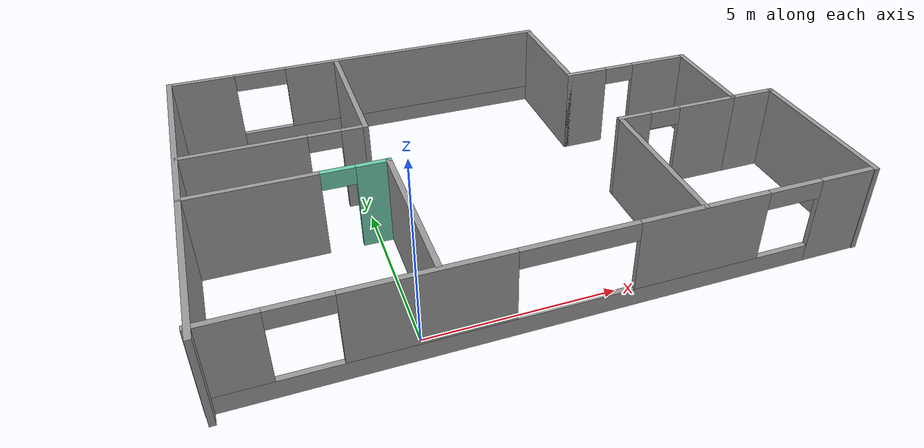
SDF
<?xml version='1.0'?>
<sdf version='1.6'>
  <model name='MyBuilding'>
    <pose frame=''>3.48636 4.585 0 0 -0 0</pose>
    <link name='Wall_0'>
      <collision name='Wall_0_Collision'>
        <geometry>
          <box>
            <size>11 0.15 2.5</size>
          </box>
        </geometry>
        <pose frame=''>0 0 1.25 0 -0 0</pose>
      </collision>
      <visual name='Wall_0_Visual'>
        <pose frame=''>0 0 1.25 0 -0 0</pose>
        <geometry>
          <box>
            <size>11 0.15 2.5</size>
          </box>
        </geometry>
        <material>
          <script>
            <uri>file://media/materials/scripts/gazebo.material</uri>
            <name>Gazebo/Grey</name>
          </script>
          <ambient>1 1 1 1</ambient>
        </material>
        <meta>
          <layer>0</layer>
        </meta>
      </visual>
      <pose frame=''>-8.20636 0 0 0 -0 1.5708</pose>
    </link>
    <link name='Wall_1'>
      <pose frame=''>-2.53136 5.425 0 0 -0 0</pose>
      <visual name='Wall_1_Visual_0'>
        <pose frame=''>-4.78254 0 1.25 0 -0 0</pose>
        <geometry>
          <box>
            <size>1.93492 0.15 2.5</size>
          </box>
        </geometry>
        <material>
          <script>
            <uri>file://media/materials/scripts/gazebo.material</uri>
            <name>Gazebo/Grey</name>
          </script>
          <ambient>1 1 1 1</ambient>
        </material>
        <meta>
          <layer>0</layer>
        </meta>
      </visual>
      <collision name='Wall_1_Collision_0'>
        <geometry>
          <box>
            <size>1.93492 0.15 2.5</size>
          </box>
        </geometry>
        <pose frame=''>-4.78254 0 1.25 0 -0 0</pose>
      </collision>
      <visual name='Wall_1_Visual_1'>
        <pose frame=''>0.967458 0 0.25 0 -0 0</pose>
        <geometry>
          <box>
            <size>9.56508 0.15 0.5</size>
          </box>
        </geometry>
        <material>
          <script>
            <uri>file://media/materials/scripts/gazebo.material</uri>
            <name>Gazebo/Grey</name>
          </script>
          <ambient>1 1 1 1</ambient>
        </material>
        <meta>
          <layer>0</layer>
        </meta>
      </visual>
      <collision name='Wall_1_Collision_1'>
        <geometry>
          <box>
            <size>9.56508 0.15 0.5</size>
          </box>
        </geometry>
        <pose frame=''>0.967458 0 0.25 0 -0 0</pose>
      </collision>
      <visual name='Wall_1_Visual_2'>
        <pose frame=''>1.71746 0 1.5 0 -0 0</pose>
        <geometry>
          <box>
            <size>8.06508 0.15 2</size>
          </box>
        </geometry>
        <material>
          <script>
            <uri>file://media/materials/scripts/gazebo.material</uri>
            <name>Gazebo/Grey</name>
          </script>
          <ambient>1 1 1 1</ambient>
        </material>
        <meta>
          <layer>0</layer>
        </meta>
      </visual>
      <collision name='Wall_1_Collision_2'>
        <geometry>
          <box>
            <size>8.06508 0.15 2</size>
          </box>
        </geometry>
        <pose frame=''>1.71746 0 1.5 0 -0 0</pose>
      </collision>
      <visual name='Wall_1_Visual_3'>
        <pose frame=''>-3.06508 0 2.25 0 -0 0</pose>
        <geometry>
          <box>
            <size>1.5 0.15 0.5</size>
          </box>
        </geometry>
        <material>
          <script>
            <uri>file://media/materials/scripts/gazebo.material</uri>
            <name>Gazebo/Grey</name>
          </script>
          <ambient>1 1 1 1</ambient>
        </material>
        <meta>
          <layer>0</layer>
        </meta>
      </visual>
      <collision name='Wall_1_Collision_3'>
        <geometry>
          <box>
            <size>1.5 0.15 0.5</size>
          </box>
        </geometry>
        <pose frame=''>-3.06508 0 2.25 0 -0 0</pose>
      </collision>
    </link>
    <link name='Wall_10'>
      <pose frame=''>-5.63893 -0.652816 0 0 -0 0</pose>
      <visual name='Wall_10_Visual_0'>
        <pose frame=''>-0.921002 0 1.25 0 -0 0</pose>
        <geometry>
          <box>
            <size>3.408 0.15 2.5</size>
          </box>
        </geometry>
        <material>
          <script>
            <uri>file://media/materials/scripts/gazebo.material</uri>
            <name>Gazebo/Grey</name>
          </script>
          <ambient>1 1 1 1</ambient>
        </material>
        <meta>
          <layer>0</layer>
        </meta>
      </visual>
      <collision name='Wall_10_Collision_0'>
        <geometry>
          <box>
            <size>3.408 0.15 2.5</size>
          </box>
        </geometry>
        <pose frame=''>-0.921002 0 1.25 0 -0 0</pose>
      </collision>
      <visual name='Wall_10_Visual_1'>
        <pose frame=''>2.154 0 1.25 0 -0 0</pose>
        <geometry>
          <box>
            <size>0.942003 0.15 2.5</size>
          </box>
        </geometry>
        <material>
          <script>
            <uri>file://media/materials/scripts/gazebo.material</uri>
            <name>Gazebo/Grey</name>
          </script>
          <ambient>0.435294 0.796078 0.67451 1</ambient>
        </material>
        <meta>
          <layer>0</layer>
        </meta>
      </visual>
      <collision name='Wall_10_Collision_1'>
        <geometry>
          <box>
            <size>0.942003 0.15 2.5</size>
          </box>
        </geometry>
        <pose frame=''>2.154 0 1.25 0 -0 0</pose>
      </collision>
      <visual name='Wall_10_Visual_2'>
        <pose frame=''>1.233 0 2.25 0 -0 0</pose>
        <geometry>
          <box>
            <size>0.9 0.15 0.5</size>
          </box>
        </geometry>
        <material>
          <script>
            <uri>file://media/materials/scripts/gazebo.material</uri>
            <name>Gazebo/Grey</name>
          </script>
          <ambient>0.435294 0.796078 0.67451 1</ambient>
        </material>
        <meta>
          <layer>0</layer>
        </meta>
      </visual>
      <collision name='Wall_10_Collision_2'>
        <geometry>
          <box>
            <size>0.9 0.15 0.5</size>
          </box>
        </geometry>
        <pose frame=''>1.233 0 2.25 0 -0 0</pose>
      </collision>
    </link>
    <link name='Wall_11'>
      <collision name='Wall_11_Collision'>
        <geometry>
          <box>
            <size>4.5 0.15 2.5</size>
          </box>
        </geometry>
        <pose frame=''>0 0 1.25 0 -0 0</pose>
      </collision>
      <visual name='Wall_11_Visual'>
        <pose frame=''>0 0 1.25 0 -0 0</pose>
        <geometry>
          <box>
            <size>4.5 0.15 2.5</size>
          </box>
        </geometry>
        <material>
          <script>
            <uri>file://media/materials/scripts/gazebo.material</uri>
            <name>Gazebo/Grey</name>
          </script>
          <ambient>1 1 1 1</ambient>
        </material>
        <meta>
          <layer>0</layer>
        </meta>
      </visual>
      <pose frame=''>-3.08893 -2.82782 0 0 0 -1.5708</pose>
    </link>
    <link name='Wall_13'>
      <pose frame=''>-5.71073 1.2092 0 0 -0 0</pose>
      <visual name='Wall_13_Visual_0'>
        <pose frame=''>-0.822602 0 1.25 0 -0 0</pose>
        <geometry>
          <box>
            <size>3.3548 0.15 2.5</size>
          </box>
        </geometry>
        <material>
          <script>
            <uri>file://media/materials/scripts/gazebo.material</uri>
            <name>Gazebo/Grey</name>
          </script>
          <ambient>1 1 1 1</ambient>
        </material>
        <meta>
          <layer>0</layer>
        </meta>
      </visual>
      <collision name='Wall_13_Collision_0'>
        <geometry>
          <box>
            <size>3.3548 0.15 2.5</size>
          </box>
        </geometry>
        <pose frame=''>-0.822602 0 1.25 0 -0 0</pose>
      </collision>
      <visual name='Wall_13_Visual_1'>
        <pose frame=''>2.1274 0 1.25 0 -0 0</pose>
        <geometry>
          <box>
            <size>0.745204 0.15 2.5</size>
          </box>
        </geometry>
        <material>
          <script>
            <uri>file://media/materials/scripts/gazebo.material</uri>
            <name>Gazebo/Grey</name>
          </script>
          <ambient>1 1 1 1</ambient>
        </material>
        <meta>
          <layer>0</layer>
        </meta>
      </visual>
      <collision name='Wall_13_Collision_1'>
        <geometry>
          <box>
            <size>0.745204 0.15 2.5</size>
          </box>
        </geometry>
        <pose frame=''>2.1274 0 1.25 0 -0 0</pose>
      </collision>
      <visual name='Wall_13_Visual_2'>
        <pose frame=''>1.3048 0 2.25 0 -0 0</pose>
        <geometry>
          <box>
            <size>0.9 0.15 0.5</size>
          </box>
        </geometry>
        <material>
          <script>
            <uri>file://media/materials/scripts/gazebo.material</uri>
            <name>Gazebo/Grey</name>
          </script>
          <ambient>1 1 1 1</ambient>
        </material>
        <meta>
          <layer>0</layer>
        </meta>
      </visual>
      <collision name='Wall_13_Collision_2'>
        <geometry>
          <box>
            <size>0.9 0.15 0.5</size>
          </box>
        </geometry>
        <pose frame=''>1.3048 0 2.25 0 -0 0</pose>
      </collision>
    </link>
    <link name='Wall_18'>
      <collision name='Wall_18_Collision'>
        <geometry>
          <box>
            <size>4.25 0.15 2.5</size>
          </box>
        </geometry>
        <pose frame=''>0 0 1.25 0 -0 0</pose>
      </collision>
      <visual name='Wall_18_Visual'>
        <pose frame=''>0 0 1.25 0 -0 0</pose>
        <geometry>
          <box>
            <size>4.25 0.15 2.5</size>
          </box>
        </geometry>
        <material>
          <script>
            <uri>file://media/materials/scripts/gazebo.material</uri>
            <name>Gazebo/Grey</name>
          </script>
          <ambient>1 1 1 1</ambient>
        </material>
        <meta>
          <layer>0</layer>
        </meta>
      </visual>
      <pose frame=''>-3.28573 3.2592 0 0 -0 1.5708</pose>
    </link>
    <link name='Wall_2'>
      <collision name='Wall_2_Collision'>
        <geometry>
          <box>
            <size>3.5 0.15 2.5</size>
          </box>
        </geometry>
        <pose frame=''>0 0 1.25 0 -0 0</pose>
      </collision>
      <visual name='Wall_2_Visual'>
        <pose frame=''>0 0 1.25 0 -0 0</pose>
        <geometry>
          <box>
            <size>3.5 0.15 2.5</size>
          </box>
        </geometry>
        <material>
          <script>
            <uri>file://media/materials/scripts/gazebo.material</uri>
            <name>Gazebo/Grey</name>
          </script>
          <ambient>1 1 1 1</ambient>
        </material>
        <meta>
          <layer>0</layer>
        </meta>
      </visual>
      <pose frame=''>3.14364 3.75 0 0 0 -1.5708</pose>
    </link>
    <link name='Wall_25'>
      <pose frame=''>5.19364 -0.775 0 0 -0 3.14159</pose>
      <visual name='Wall_25_Visual_0'>
        <pose frame=''>-0.95482 0 1.25 0 -0 0</pose>
        <geometry>
          <box>
            <size>1.84036 0.15 2.5</size>
          </box>
        </geometry>
        <material>
          <script>
            <uri>file://media/materials/scripts/gazebo.material</uri>
            <name>Gazebo/Grey</name>
          </script>
          <ambient>1 1 1 1</ambient>
        </material>
        <meta>
          <layer>0</layer>
        </meta>
      </visual>
      <collision name='Wall_25_Collision_0'>
        <geometry>
          <box>
            <size>1.84036 0.15 2.5</size>
          </box>
        </geometry>
        <pose frame=''>-0.95482 0 1.25 0 -0 0</pose>
      </collision>
      <visual name='Wall_25_Visual_1'>
        <pose frame=''>1.37018 0 1.25 0 -0 0</pose>
        <geometry>
          <box>
            <size>1.00964 0.15 2.5</size>
          </box>
        </geometry>
        <material>
          <script>
            <uri>file://media/materials/scripts/gazebo.material</uri>
            <name>Gazebo/Grey</name>
          </script>
          <ambient>1 1 1 1</ambient>
        </material>
        <meta>
          <layer>0</layer>
        </meta>
      </visual>
      <collision name='Wall_25_Collision_1'>
        <geometry>
          <box>
            <size>1.00964 0.15 2.5</size>
          </box>
        </geometry>
        <pose frame=''>1.37018 0 1.25 0 -0 0</pose>
      </collision>
      <visual name='Wall_25_Visual_2'>
        <pose frame=''>0.41536 0 2.25 0 -0 0</pose>
        <geometry>
          <box>
            <size>0.9 0.15 0.5</size>
          </box>
        </geometry>
        <material>
          <script>
            <uri>file://media/materials/scripts/gazebo.material</uri>
            <name>Gazebo/Grey</name>
          </script>
          <ambient>1 1 1 1</ambient>
        </material>
        <meta>
          <layer>0</layer>
        </meta>
      </visual>
      <collision name='Wall_25_Collision_2'>
        <geometry>
          <box>
            <size>0.9 0.15 0.5</size>
          </box>
        </geometry>
        <pose frame=''>0.41536 0 2.25 0 -0 0</pose>
      </collision>
    </link>
    <link name='Wall_26'>
      <collision name='Wall_26_Collision'>
        <geometry>
          <box>
            <size>4.5 0.15 2.5</size>
          </box>
        </geometry>
        <pose frame=''>0 0 1.25 0 -0 0</pose>
      </collision>
      <visual name='Wall_26_Visual'>
        <pose frame=''>0 0 1.25 0 -0 0</pose>
        <geometry>
          <box>
            <size>4.5 0.15 2.5</size>
          </box>
        </geometry>
        <material>
          <script>
            <uri>file://media/materials/scripts/gazebo.material</uri>
            <name>Gazebo/Grey</name>
          </script>
          <ambient>1 1 1 1</ambient>
        </material>
        <meta>
          <layer>0</layer>
        </meta>
      </visual>
      <pose frame=''>3.39364 -2.95 0 0 0 -1.5708</pose>
    </link>
    <link name='Wall_3'>
      <pose frame=''>5.06864 2.075 0 0 -0 0</pose>
      <visual name='Wall_3_Visual_0'>
        <pose frame=''>-1.36345 0 1.25 0 -0 0</pose>
        <geometry>
          <box>
            <size>1.2731 0.15 2.5</size>
          </box>
        </geometry>
        <material>
          <script>
            <uri>file://media/materials/scripts/gazebo.material</uri>
            <name>Gazebo/Grey</name>
          </script>
          <ambient>1 1 1 1</ambient>
        </material>
        <meta>
          <layer>0</layer>
        </meta>
      </visual>
      <collision name='Wall_3_Collision_0'>
        <geometry>
          <box>
            <size>1.2731 0.15 2.5</size>
          </box>
        </geometry>
        <pose frame=''>-1.36345 0 1.25 0 -0 0</pose>
      </collision>
      <visual name='Wall_3_Visual_1'>
        <pose frame=''>1.08655 0 1.25 0 -0 0</pose>
        <geometry>
          <box>
            <size>1.8269 0.15 2.5</size>
          </box>
        </geometry>
        <material>
          <script>
            <uri>file://media/materials/scripts/gazebo.material</uri>
            <name>Gazebo/Grey</name>
          </script>
          <ambient>1 1 1 1</ambient>
        </material>
        <meta>
          <layer>0</layer>
        </meta>
      </visual>
      <collision name='Wall_3_Collision_1'>
        <geometry>
          <box>
            <size>1.8269 0.15 2.5</size>
          </box>
        </geometry>
        <pose frame=''>1.08655 0 1.25 0 -0 0</pose>
      </collision>
      <visual name='Wall_3_Visual_2'>
        <pose frame=''>-0.276899 0 2.25 0 -0 0</pose>
        <geometry>
          <box>
            <size>0.9 0.15 0.5</size>
          </box>
        </geometry>
        <material>
          <script>
            <uri>file://media/materials/scripts/gazebo.material</uri>
            <name>Gazebo/Grey</name>
          </script>
          <ambient>1 1 1 1</ambient>
        </material>
        <meta>
          <layer>0</layer>
        </meta>
      </visual>
      <collision name='Wall_3_Collision_2'>
        <geometry>
          <box>
            <size>0.9 0.15 0.5</size>
          </box>
        </geometry>
        <pose frame=''>-0.276899 0 2.25 0 -0 0</pose>
      </collision>
    </link>
    <link name='Wall_4'>
      <collision name='Wall_4_Collision'>
        <geometry>
          <box>
            <size>3 0.15 2.5</size>
          </box>
        </geometry>
        <pose frame=''>0 0 1.25 0 -0 0</pose>
      </collision>
      <visual name='Wall_4_Visual'>
        <pose frame=''>0 0 1.25 0 -0 0</pose>
        <geometry>
          <box>
            <size>3 0.15 2.5</size>
          </box>
        </geometry>
        <material>
          <script>
            <uri>file://media/materials/scripts/gazebo.material</uri>
            <name>Gazebo/Grey</name>
          </script>
          <ambient>1 1 1 1</ambient>
        </material>
        <meta>
          <layer>0</layer>
        </meta>
      </visual>
      <pose frame=''>6.99364 0.65 0 0 0 -1.5708</pose>
    </link>
    <link name='Wall_5'>
      <collision name='Wall_5_Collision'>
        <geometry>
          <box>
            <size>1.4127 0.15 2.5</size>
          </box>
        </geometry>
        <pose frame=''>0 0 1.25 0 -0 0</pose>
      </collision>
      <visual name='Wall_5_Visual'>
        <pose frame=''>0 0 1.25 0 -0 0</pose>
        <geometry>
          <box>
            <size>1.4127 0.15 2.5</size>
          </box>
        </geometry>
        <material>
          <script>
            <uri>file://media/materials/scripts/gazebo.material</uri>
            <name>Gazebo/Grey</name>
          </script>
          <ambient>1 1 1 1</ambient>
        </material>
        <meta>
          <layer>0</layer>
        </meta>
      </visual>
      <pose frame=''>7.62494 -0.775642 0 0 0 -0.001017</pose>
    </link>
    <link name='Wall_6'>
      <collision name='Wall_6_Collision'>
        <geometry>
          <box>
            <size>4.5 0.15 2.5</size>
          </box>
        </geometry>
        <pose frame=''>0 0 1.25 0 -0 0</pose>
      </collision>
      <visual name='Wall_6_Visual'>
        <pose frame=''>0 0 1.25 0 -0 0</pose>
        <geometry>
          <box>
            <size>4.5 0.15 2.5</size>
          </box>
        </geometry>
        <material>
          <script>
            <uri>file://media/materials/scripts/gazebo.material</uri>
            <name>Gazebo/Grey</name>
          </script>
          <ambient>1 1 1 1</ambient>
        </material>
        <meta>
          <layer>0</layer>
        </meta>
      </visual>
      <pose frame=''>8.25624 -2.96667 0 0 0 -1.5708</pose>
    </link>
    <link name='Wall_7'>
      <pose frame=''>-6e-05 -5.12564 0 0 -0 3.14152</pose>
      <visual name='Wall_7_Visual_0'>
        <pose frame=''>-7.4912 0 1.25 0 -0 0</pose>
        <geometry>
          <box>
            <size>1.6802 0.15 2.5</size>
          </box>
        </geometry>
        <material>
          <script>
            <uri>file://media/materials/scripts/gazebo.material</uri>
            <name>Gazebo/Grey</name>
          </script>
          <ambient>1 1 1 1</ambient>
        </material>
        <meta>
          <layer>0</layer>
        </meta>
      </visual>
      <collision name='Wall_7_Collision_0'>
        <geometry>
          <box>
            <size>1.6802 0.15 2.5</size>
          </box>
        </geometry>
        <pose frame=''>-7.4912 0 1.25 0 -0 0</pose>
      </collision>
      <visual name='Wall_7_Visual_1'>
        <pose frame=''>0.840102 0 0.25 0 -0 0</pose>
        <geometry>
          <box>
            <size>14.9824 0.15 0.5</size>
          </box>
        </geometry>
        <material>
          <script>
            <uri>file://media/materials/scripts/gazebo.material</uri>
            <name>Gazebo/Grey</name>
          </script>
          <ambient>1 1 1 1</ambient>
        </material>
        <meta>
          <layer>0</layer>
        </meta>
      </visual>
      <collision name='Wall_7_Collision_1'>
        <geometry>
          <box>
            <size>14.9824 0.15 0.5</size>
          </box>
        </geometry>
        <pose frame=''>0.840102 0 0.25 0 -0 0</pose>
      </collision>
      <visual name='Wall_7_Visual_2'>
        <pose frame=''>-3.42169 0 1.5 0 -0 0</pose>
        <geometry>
          <box>
            <size>3.45881 0.15 2</size>
          </box>
        </geometry>
        <material>
          <script>
            <uri>file://media/materials/scripts/gazebo.material</uri>
            <name>Gazebo/Grey</name>
          </script>
          <ambient>1 1 1 1</ambient>
        </material>
        <meta>
          <layer>0</layer>
        </meta>
      </visual>
      <collision name='Wall_7_Collision_2'>
        <geometry>
          <box>
            <size>3.45881 0.15 2</size>
          </box>
        </geometry>
        <pose frame=''>-3.42169 0 1.5 0 -0 0</pose>
      </collision>
      <visual name='Wall_7_Visual_3'>
        <pose frame=''>3.30767 0 1.5 0 -0 0</pose>
        <geometry>
          <box>
            <size>3.99991 0.15 2</size>
          </box>
        </geometry>
        <material>
          <script>
            <uri>file://media/materials/scripts/gazebo.material</uri>
            <name>Gazebo/Grey</name>
          </script>
          <ambient>1 1 1 1</ambient>
        </material>
        <meta>
          <layer>0</layer>
        </meta>
      </visual>
      <collision name='Wall_7_Collision_3'>
        <geometry>
          <box>
            <size>3.99991 0.15 2</size>
          </box>
        </geometry>
        <pose frame=''>3.30767 0 1.5 0 -0 0</pose>
      </collision>
      <visual name='Wall_7_Visual_4'>
        <pose frame=''>7.56946 0 1.5 0 -0 0</pose>
        <geometry>
          <box>
            <size>1.52368 0.15 2</size>
          </box>
        </geometry>
        <material>
          <script>
            <uri>file://media/materials/scripts/gazebo.material</uri>
            <name>Gazebo/Grey</name>
          </script>
          <ambient>1 1 1 1</ambient>
        </material>
        <meta>
          <layer>0</layer>
        </meta>
      </visual>
      <collision name='Wall_7_Collision_4'>
        <geometry>
          <box>
            <size>1.52368 0.15 2</size>
          </box>
        </geometry>
        <pose frame=''>7.56946 0 1.5 0 -0 0</pose>
      </collision>
      <visual name='Wall_7_Visual_5'>
        <pose frame=''>-5.9011 0 2.25 0 -0 0</pose>
        <geometry>
          <box>
            <size>1.5 0.15 0.5</size>
          </box>
        </geometry>
        <material>
          <script>
            <uri>file://media/materials/scripts/gazebo.material</uri>
            <name>Gazebo/Grey</name>
          </script>
          <ambient>1 1 1 1</ambient>
        </material>
        <meta>
          <layer>0</layer>
        </meta>
      </visual>
      <collision name='Wall_7_Collision_5'>
        <geometry>
          <box>
            <size>1.5 0.15 0.5</size>
          </box>
        </geometry>
        <pose frame=''>-5.9011 0 2.25 0 -0 0</pose>
      </collision>
      <visual name='Wall_7_Visual_6'>
        <pose frame=''>-0.192285 0 2.25 0 -0 0</pose>
        <geometry>
          <box>
            <size>3 0.15 0.5</size>
          </box>
        </geometry>
        <material>
          <script>
            <uri>file://media/materials/scripts/gazebo.material</uri>
            <name>Gazebo/Grey</name>
          </script>
          <ambient>1 1 1 1</ambient>
        </material>
        <meta>
          <layer>0</layer>
        </meta>
      </visual>
      <collision name='Wall_7_Collision_6'>
        <geometry>
          <box>
            <size>3 0.15 0.5</size>
          </box>
        </geometry>
        <pose frame=''>-0.192285 0 2.25 0 -0 0</pose>
      </collision>
      <visual name='Wall_7_Visual_7'>
        <pose frame=''>6.05762 0 2.25 0 -0 0</pose>
        <geometry>
          <box>
            <size>1.5 0.15 0.5</size>
          </box>
        </geometry>
        <material>
          <script>
            <uri>file://media/materials/scripts/gazebo.material</uri>
            <name>Gazebo/Grey</name>
          </script>
          <ambient>1 1 1 1</ambient>
        </material>
        <meta>
          <layer>0</layer>
        </meta>
      </visual>
      <collision name='Wall_7_Collision_7'>
        <geometry>
          <box>
            <size>1.5 0.15 0.5</size>
          </box>
        </geometry>
        <pose frame=''>6.05762 0 2.25 0 -0 0</pose>
      </collision>
    </link>
    <static>1</static>
  </model>
</sdf>
